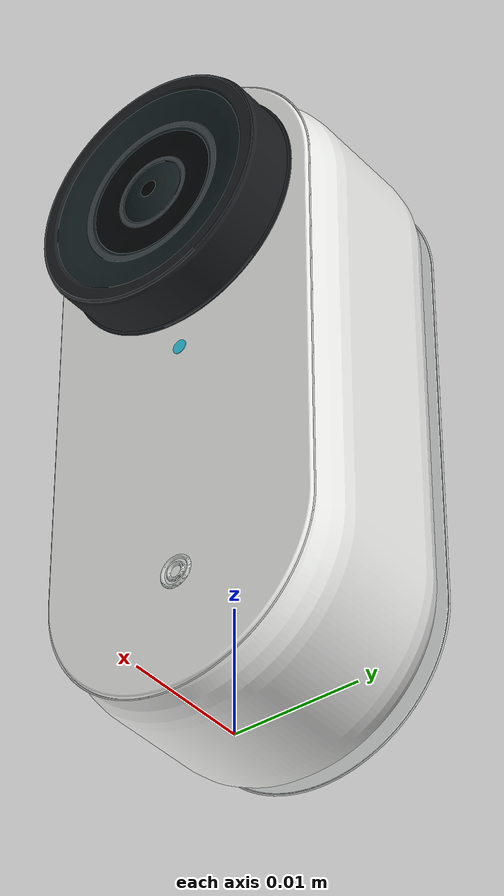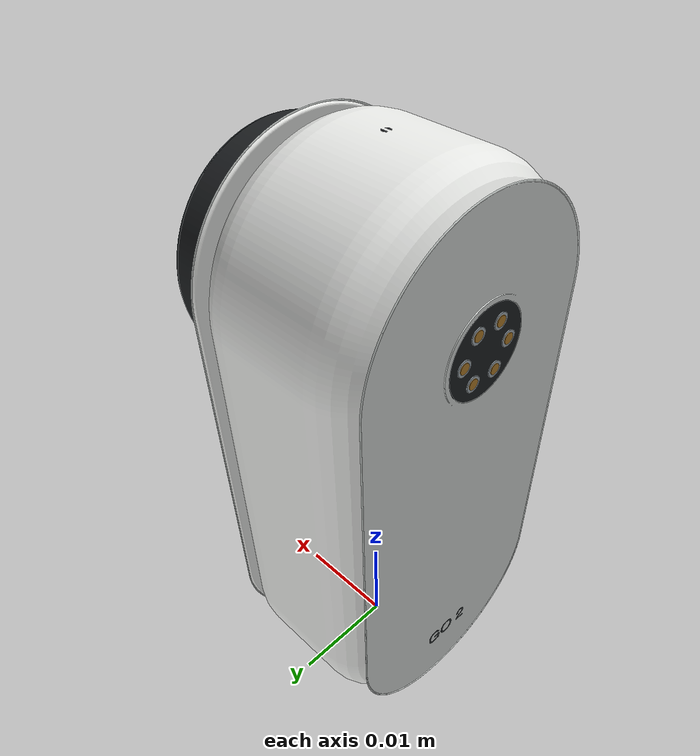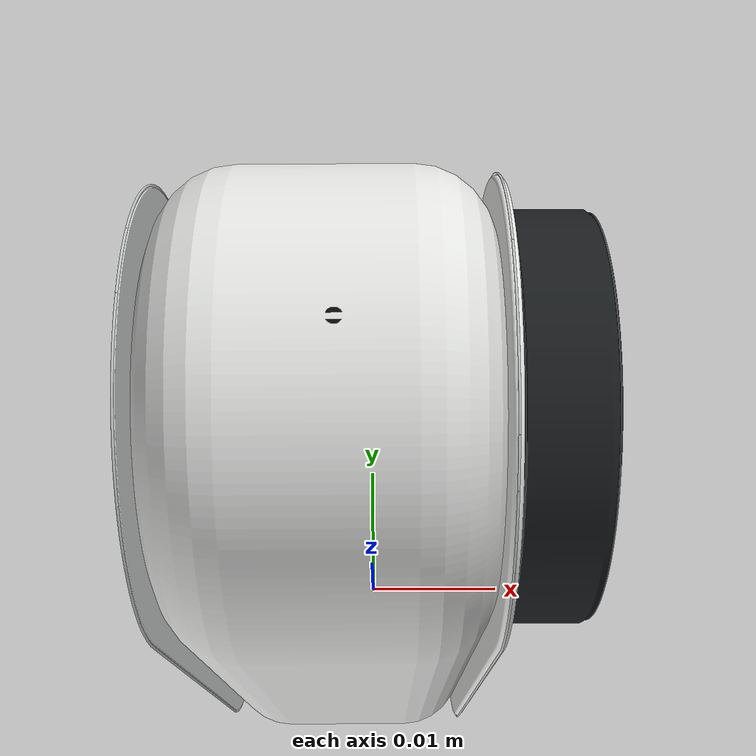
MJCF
<?xml version='1.0' encoding='utf-8'?>
<mujoco model="insta360_go2">
  <!--Independent approximate geometry; fixed sites are geometric references, not calibrated optical frames.-->
  <compiler angle="radian" inertiafromgeom="false" strippath="false" />
  <option timestep="0.002" gravity="0 0 -9.81" />
  <asset>
    <mesh name="go2_visual_mesh_0" file="../assets/meshes/visual/front_polymer.obj" scale="1 1 1" inertia="shell" />
    <mesh name="go2_visual_mesh_1" file="../assets/meshes/visual/gasket.obj" scale="1 1 1" inertia="shell" />
    <mesh name="go2_visual_mesh_2" file="../assets/meshes/visual/gold.obj" scale="1 1 1" inertia="shell" />
    <mesh name="go2_visual_mesh_3" file="../assets/meshes/visual/housing.obj" scale="1 1 1" inertia="shell" />
    <mesh name="go2_visual_mesh_4" file="../assets/meshes/visual/lens_coating.obj" scale="1 1 1" inertia="shell" />
    <mesh name="go2_visual_mesh_5" file="../assets/meshes/visual/lens_ring.obj" scale="1 1 1" inertia="shell" />
    <mesh name="go2_visual_mesh_6" file="../assets/meshes/visual/optical_glass.obj" scale="1 1 1" inertia="shell" />
    <mesh name="go2_visual_mesh_7" file="../assets/meshes/visual/print.obj" scale="1 1 1" inertia="shell" />
    <mesh name="go2_visual_mesh_8" file="../assets/meshes/visual/pupil.obj" scale="1 1 1" inertia="shell" />
    <mesh name="go2_visual_mesh_9" file="../assets/meshes/visual/rear_polymer.obj" scale="1 1 1" inertia="shell" />
    <mesh name="go2_visual_mesh_10" file="../assets/meshes/visual/rim_edge.obj" scale="1 1 1" inertia="shell" />
    <mesh name="go2_visual_mesh_11" file="../assets/meshes/visual/silver.obj" scale="1 1 1" inertia="shell" />
    <mesh name="go2_visual_mesh_12" file="../assets/meshes/visual/slot.obj" scale="1 1 1" inertia="shell" />
    <mesh name="go2_visual_mesh_13" file="../assets/meshes/visual/status.obj" scale="1 1 1" inertia="shell" />
    <mesh name="go2_visual_mesh_14" file="../assets/meshes/visual/subtle_print.obj" scale="1 1 1" inertia="shell" />
    <mesh name="go2_collision_mesh_0" file="../assets/meshes/collision/body.stl" scale="1 1 1" inertia="convex" />
    <mesh name="go2_collision_mesh_1" file="../assets/meshes/collision/front_lens.stl" scale="1 1 1" inertia="convex" />
  </asset>
  <worldbody>
    <body name="go2_link">
      <inertial pos="0 0 0.02645" mass="0.0265" diaginertia="7.40977541667e-06 7.12607083333e-06 2.17620208333e-06" quat="1 0 0 0" />
      <geom name="go2_visual_0" type="mesh" mesh="go2_visual_mesh_0" pos="0 0 0" quat="1 0 0 0" density="0" group="2" contype="0" conaffinity="0" rgba="0.93 0.935 0.925 1" />
      <geom name="go2_visual_1" type="mesh" mesh="go2_visual_mesh_1" pos="0 0 0" quat="1 0 0 0" density="0" group="2" contype="0" conaffinity="0" rgba="0.12 0.135 0.145 1" />
      <geom name="go2_visual_2" type="mesh" mesh="go2_visual_mesh_2" pos="0 0 0" quat="1 0 0 0" density="0" group="2" contype="0" conaffinity="0" rgba="0.72 0.51 0.17 1" />
      <geom name="go2_visual_3" type="mesh" mesh="go2_visual_mesh_3" pos="0 0 0" quat="1 0 0 0" density="0" group="2" contype="0" conaffinity="0" rgba="0.91 0.915 0.905 1" />
      <geom name="go2_visual_4" type="mesh" mesh="go2_visual_mesh_4" pos="0 0 0" quat="1 0 0 0" density="0" group="2" contype="0" conaffinity="0" rgba="0.078 0.123 0.133 1" />
      <geom name="go2_visual_5" type="mesh" mesh="go2_visual_mesh_5" pos="0 0 0" quat="1 0 0 0" density="0" group="2" contype="0" conaffinity="0" rgba="0.105 0.115 0.122 1" />
      <geom name="go2_visual_6" type="mesh" mesh="go2_visual_mesh_6" pos="0 0 0" quat="1 0 0 0" density="0" group="2" contype="0" conaffinity="0" rgba="0.014 0.024 0.028 1" />
      <geom name="go2_visual_7" type="mesh" mesh="go2_visual_mesh_7" pos="0 0 0" quat="1 0 0 0" density="0" group="2" contype="0" conaffinity="0" rgba="0.19 0.21 0.22 1" />
      <geom name="go2_visual_8" type="mesh" mesh="go2_visual_mesh_8" pos="0 0 0" quat="1 0 0 0" density="0" group="2" contype="0" conaffinity="0" rgba="0.004 0.007 0.009 1" />
      <geom name="go2_visual_9" type="mesh" mesh="go2_visual_mesh_9" pos="0 0 0" quat="1 0 0 0" density="0" group="2" contype="0" conaffinity="0" rgba="0.87 0.885 0.875 1" />
      <geom name="go2_visual_10" type="mesh" mesh="go2_visual_mesh_10" pos="0 0 0" quat="1 0 0 0" density="0" group="2" contype="0" conaffinity="0" rgba="0.25 0.278 0.29 1" />
      <geom name="go2_visual_11" type="mesh" mesh="go2_visual_mesh_11" pos="0 0 0" quat="1 0 0 0" density="0" group="2" contype="0" conaffinity="0" rgba="0.67 0.71 0.735 1" />
      <geom name="go2_visual_12" type="mesh" mesh="go2_visual_mesh_12" pos="0 0 0" quat="1 0 0 0" density="0" group="2" contype="0" conaffinity="0" rgba="0.025 0.033 0.039 1" />
      <geom name="go2_visual_13" type="mesh" mesh="go2_visual_mesh_13" pos="0 0 0" quat="1 0 0 0" density="0" group="2" contype="0" conaffinity="0" rgba="0.2 0.79 0.89 1" />
      <geom name="go2_visual_14" type="mesh" mesh="go2_visual_mesh_14" pos="0 0 0" quat="1 0 0 0" density="0" group="2" contype="0" conaffinity="0" rgba="0.78 0.8 0.79 1" />
      <geom name="go2_collision_0" type="mesh" mesh="go2_collision_mesh_0" pos="0 0 0" quat="1 0 0 0" density="0" group="3" contype="1" conaffinity="1" rgba="0 0 0 0" />
      <geom name="go2_collision_1" type="mesh" mesh="go2_collision_mesh_1" pos="0 0 0" quat="1 0 0 0" density="0" group="3" contype="1" conaffinity="1" rgba="0 0 0 0" />
      <site name="go2_mount" pos="0 0 0" quat="1 0 0 0" type="sphere" size="0.001" group="4" rgba="0 0 0 0" />
      <site name="go2_front_lens_surface" pos="0.01035 0 0.0411" quat="0.500000000002 -0.5 0.499999999998 -0.5" type="sphere" size="0.001" group="4" rgba="0 0 0 0" />
    </body>
  </worldbody>
</mujoco>
